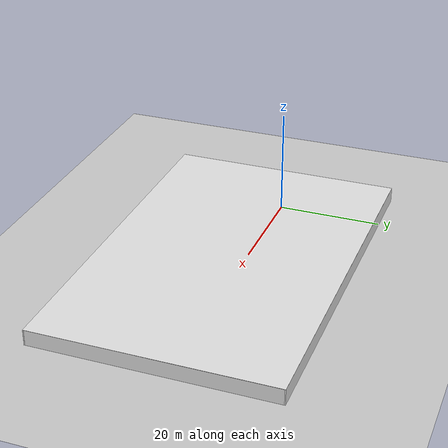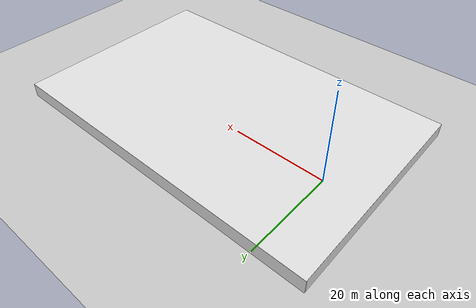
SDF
<sdf version="1.7">
 <world name="scenario_room">
  <physics name="default_physics" default="true" type="dart">
   <max_step_size>0.001</max_step_size>
   <real_time_factor>1.0</real_time_factor>
   <real_time_update_rate>1000</real_time_update_rate>
  </physics>
  <plugin filename="gz-sim-physics-system" name="gz::sim::systems::Physics"/>
  <plugin filename="gz-sim-user-commands-system" name="gz::sim::systems::UserCommands"/>
  <plugin filename="gz-sim-scene-broadcaster-system" name="gz::sim::systems::SceneBroadcaster"/>
  <plugin filename="gz-sim-contact-system" name="gz::sim::systems::Contact"/>
  <plugin filename="gz-sim-sensors-system" name="gz::sim::systems::Sensors">
   <render_engine>ogre2</render_engine>
  </plugin>
  <plugin filename="gz-sim-imu-system" name="gz::sim::systems::Imu"/>
  <scene>
   <ambient>0.6 0.6 0.6 1</ambient>
   <background>0.3 0.7 0.9 1</background>
   <shadows>0</shadows>
   <grid>1</grid>
  </scene>
  <light type="directional" name="sun">
   <cast_shadows>false</cast_shadows>
   <pose>0 0 10 0 0 0</pose>
   <diffuse>0.8 0.8 0.8 1</diffuse>
   <specular>0.2 0.2 0.2 1</specular>
   <direction>-0.5 0.1 -0.9</direction>
  </light>
  <model name="ground_plane">
   <static>true</static>
   <link name="link">
    <collision name="collision">
     <geometry><plane><normal>0 0 1</normal><size>200 200</size></plane></geometry>
     <surface>
      <friction><ode><mu>100</mu><mu2>50</mu2></ode></friction>
      <contact>
       <ode>
        <soft_cfm>0</soft_cfm>
        <soft_erp>0.2</soft_erp>
        <kp>1e+13</kp>
        <kd>1</kd>
        <max_vel>0.01</max_vel>
        <min_depth>0.001</min_depth>
       </ode>
      </contact>
     </surface>
    </collision>
    <visual name="visual">
     <pose>25 -2.5 0 0 0 0</pose>
     <cast_shadows>false</cast_shadows>
     <geometry><plane><normal>0 0 1</normal><size>70.4 45.4</size></plane></geometry>
     <material>
      <ambient>0.8 0.8 0.8 1</ambient>
      <diffuse>0.8 0.8 0.8 1</diffuse>
      <specular>0.8 0.8 0.8 1</specular>
     </material>
    </visual>
   </link>
  </model>
  <model name="wall_north">
   <static>true</static>
   <pose>25 20.1 1.5 0 0 0</pose>
   <link name="link">
    <collision name="collision"><geometry><box><size>70.4 0.2 3</size></box></geometry></collision>
    <visual name="visual">
     <geometry><box><size>70.4 0.2 3</size></box></geometry>
     <material><ambient>0.85 0.85 0.85 1</ambient><diffuse>0.85 0.85 0.85 1</diffuse></material>
    </visual>
   </link>
  </model>
  <model name="wall_south">
   <static>true</static>
   <pose>25 -25.1 1.5 0 0 0</pose>
   <link name="link">
    <collision name="collision"><geometry><box><size>70.4 0.2 3</size></box></geometry></collision>
    <visual name="visual">
     <geometry><box><size>70.4 0.2 3</size></box></geometry>
     <material><ambient>0.85 0.85 0.85 1</ambient><diffuse>0.85 0.85 0.85 1</diffuse></material>
    </visual>
   </link>
  </model>
  <model name="wall_east">
   <static>true</static>
   <pose>60.1 -2.5 1.5 0 0 0</pose>
   <link name="link">
    <collision name="collision"><geometry><box><size>0.2 45 3</size></box></geometry></collision>
    <visual name="visual">
     <geometry><box><size>0.2 45 3</size></box></geometry>
     <material><ambient>0.85 0.85 0.85 1</ambient><diffuse>0.85 0.85 0.85 1</diffuse></material>
    </visual>
   </link>
  </model>
  <model name="wall_west">
   <static>true</static>
   <pose>-10.1 -2.5 1.5 0 0 0</pose>
   <link name="link">
    <collision name="collision"><geometry><box><size>0.2 45 3</size></box></geometry></collision>
    <visual name="visual">
     <geometry><box><size>0.2 45 3</size></box></geometry>
     <material><ambient>0.85 0.85 0.85 1</ambient><diffuse>0.85 0.85 0.85 1</diffuse></material>
    </visual>
   </link>
  </model>
  <model name="ceiling">
   <static>true</static>
   <pose>25 -2.5 3 3.14159265 0 0</pose>
   <link name="link">
    <visual name="visual">
     <cast_shadows>false</cast_shadows>
     <geometry><plane><normal>0 0 1</normal><size>70.4 45.4</size></plane></geometry>
     <material><ambient>0.9 0.9 0.9 1</ambient><diffuse>0.9 0.9 0.9 1</diffuse></material>
    </visual>
   </link>
  </model>
 </world>
</sdf>
